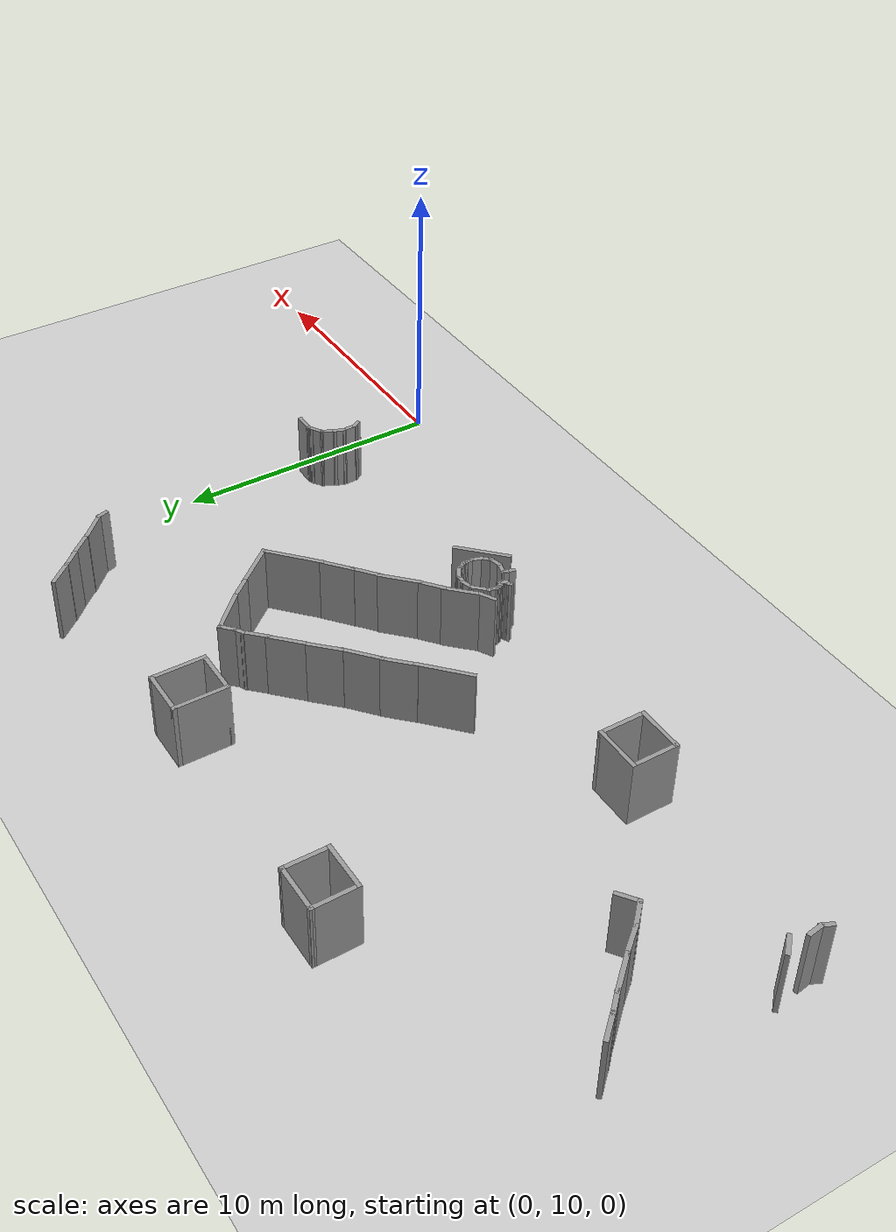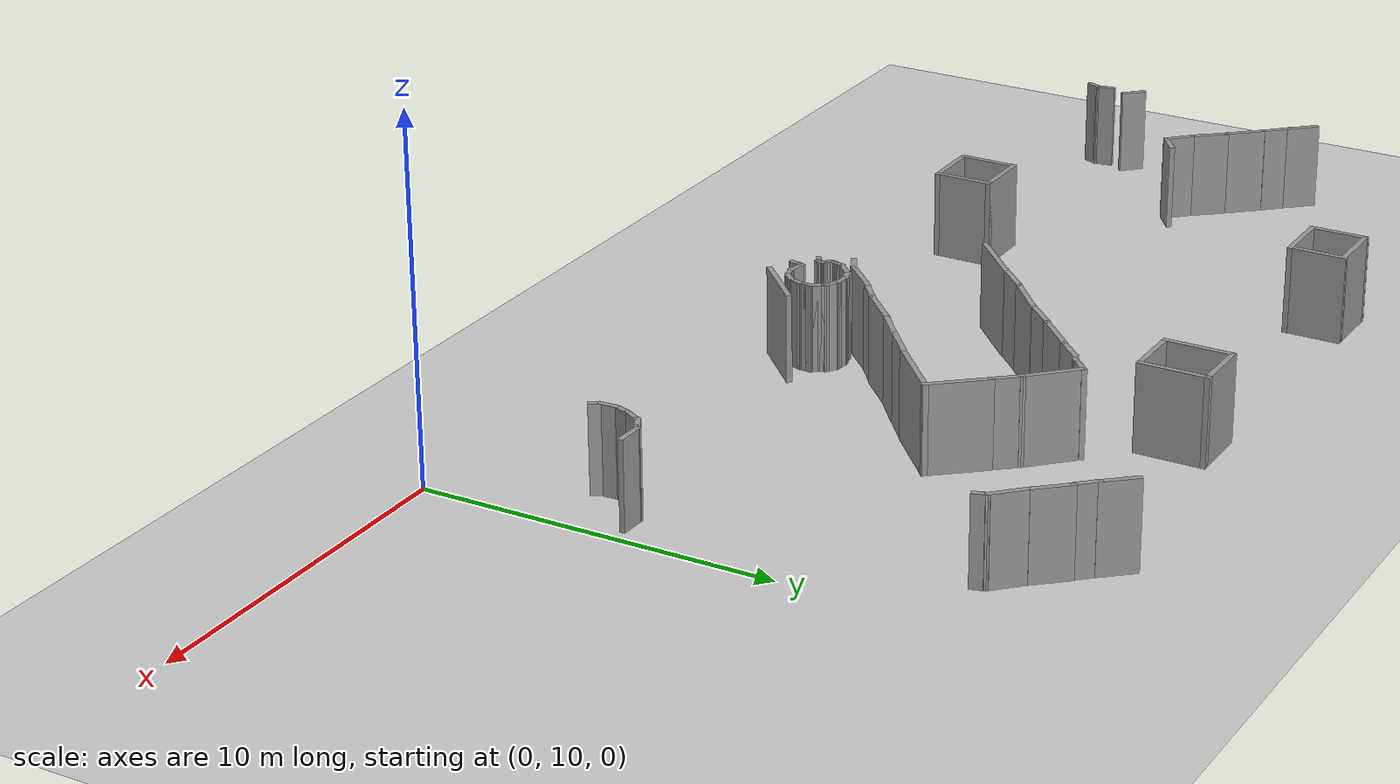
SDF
<sdf version="1.6">
 <world name="default">
  <model name="ground_plane">
   <static>1</static>
   <link name="link">
    <collision name="collision">
     <geometry><plane><normal>0 0 1</normal><size>100 100</size></plane></geometry>
     <surface><friction><ode><mu>100</mu><mu2>50</mu2></ode></friction></surface>
    </collision>
    <visual name="visual">
     <cast_shadows>0</cast_shadows>
     <geometry><plane><normal>0 0 1</normal><size>100 100</size></plane></geometry>
     <material>
      <script><uri>file://media/materials/scripts/gazebo.material</uri><name>Gazebo/Grey</name></script>
     </material>
    </visual>
   </link>
  </model>
  <model name="scene">
   <pose>1.8013 -1.70593 0 0 -0 0</pose>
   <link name="Wall_1061">
    <collision name="Wall_1061_Collision">
     <geometry><box><size>0.60909 0.15 2.5</size></box></geometry>
     <pose>0 0 1.25 0 -0 0</pose>
    </collision>
    <visual name="Wall_1061_Visual">
     <pose>0 0 1.25 0 -0 0</pose>
     <geometry><box><size>0.60909 0.15 2.5</size></box></geometry>
     <material>
      <script><uri>file://media/materials/scripts/gazebo.material</uri><name>Gazebo/Grey</name></script>
      <ambient>1 1 1 1</ambient>
     </material>
    </visual>
    <pose>-30.5621 17.0403 0 0 0 -1.43553</pose>
   </link>
   <link name="Wall_1062">
    <collision name="Wall_1062_Collision">
     <geometry><box><size>0.477971 0.15 2.5</size></box></geometry>
     <pose>0 0 1.25 0 -0 0</pose>
    </collision>
    <visual name="Wall_1062_Visual">
     <pose>0 0 1.25 0 -0 0</pose>
     <geometry><box><size>0.477971 0.15 2.5</size></box></geometry>
     <material>
      <script><uri>file://media/materials/scripts/gazebo.material</uri><name>Gazebo/Grey</name></script>
      <ambient>1 1 1 1</ambient>
     </material>
    </visual>
    <pose>-30.5891 16.664 0 0 0 -2.00416</pose>
   </link>
   <link name="Wall_550">
    <collision name="Wall_550_Collision">
     <geometry><box><size>0.75 0.15 2.5</size></box></geometry>
     <pose>0 0 1.25 0 -0 0</pose>
    </collision>
    <visual name="Wall_550_Visual">
     <pose>0 0 1.25 0 -0 0</pose>
     <geometry><box><size>0.75 0.15 2.5</size></box></geometry>
     <material>
      <script><uri>file://media/materials/scripts/gazebo.material</uri><name>Gazebo/Grey</name></script>
      <ambient>1 1 1 1</ambient>
     </material>
    </visual>
    <pose>-30.553 17.9878 0 0 0 -0.785398</pose>
   </link>
   <link name="Wall_553">
    <collision name="Wall_553_Collision">
     <geometry><box><size>1.00312 0.15 2.5</size></box></geometry>
     <pose>0 0 1.25 0 -0 0</pose>
    </collision>
    <visual name="Wall_553_Visual">
     <pose>0 0 1.25 0 -0 0</pose>
     <geometry><box><size>1.00312 0.15 2.5</size></box></geometry>
     <material>
      <script><uri>file://media/materials/scripts/gazebo.material</uri><name>Gazebo/Grey</name></script>
      <ambient>1 1 1 1</ambient>
     </material>
    </visual>
    <pose>-30.1625 23.6216 0 0 0 -0.837734</pose>
   </link>
   <link name="Wall_554">
    <collision name="Wall_554_Collision">
     <geometry><box><size>0.868427 0.15 2.5</size></box></geometry>
     <pose>0 0 1.25 0 -0 0</pose>
    </collision>
    <visual name="Wall_554_Visual">
     <pose>0 0 1.25 0 -0 0</pose>
     <geometry><box><size>0.868427 0.15 2.5</size></box></geometry>
     <material>
      <script><uri>file://media/materials/scripts/gazebo.material</uri><name>Gazebo/Grey</name></script>
      <ambient>1 1 1 1</ambient>
     </material>
    </visual>
    <pose>-29.6371 23.0475 0 0 0 -0.79753</pose>
   </link>
   <link name="Wall_555">
    <collision name="Wall_555_Collision">
     <geometry><box><size>1.41866 0.15 2.5</size></box></geometry>
     <pose>0 0 1.25 0 -0 0</pose>
    </collision>
    <visual name="Wall_555_Visual">
     <pose>0 0 1.25 0 -0 0</pose>
     <geometry><box><size>1.41866 0.15 2.5</size></box></geometry>
     <material>
      <script><uri>file://media/materials/scripts/gazebo.material</uri><name>Gazebo/Grey</name></script>
      <ambient>1 1 1 1</ambient>
     </material>
    </visual>
    <pose>-28.9775 22.3148 0 0 0 -0.847806</pose>
   </link>
   <link name="Wall_556">
    <collision name="Wall_556_Collision">
     <geometry><box><size>1.12637 0.15 2.5</size></box></geometry>
     <pose>0 0 1.25 0 -0 0</pose>
    </collision>
    <visual name="Wall_556_Visual">
     <pose>0 0 1.25 0 -0 0</pose>
     <geometry><box><size>1.12637 0.15 2.5</size></box></geometry>
     <material>
      <script><uri>file://media/materials/scripts/gazebo.material</uri><name>Gazebo/Grey</name></script>
      <ambient>1 1 1 1</ambient>
     </material>
    </visual>
    <pose>-28.2408 21.4588 0 0 0 -0.893319</pose>
   </link>
   <link name="Wall_557">
    <collision name="Wall_557_Collision">
     <geometry><box><size>1 0.15 2.5</size></box></geometry>
     <pose>0 0 1.25 0 -0 0</pose>
    </collision>
    <visual name="Wall_557_Visual">
     <pose>0 0 1.25 0 -0 0</pose>
     <geometry><box><size>1 0.15 2.5</size></box></geometry>
     <material>
      <script><uri>file://media/materials/scripts/gazebo.material</uri><name>Gazebo/Grey</name></script>
      <ambient>1 1 1 1</ambient>
     </material>
    </visual>
    <pose>-27.6343 20.7779 0 0 0 -0.785398</pose>
   </link>
   <link name="Wall_558">
    <collision name="Wall_558_Collision">
     <geometry><box><size>0.832149 0.15 2.5</size></box></geometry>
     <pose>0 0 1.25 0 -0 0</pose>
    </collision>
    <visual name="Wall_558_Visual">
     <pose>0 0 1.25 0 -0 0</pose>
     <geometry><box><size>0.832149 0.15 2.5</size></box></geometry>
     <material>
      <script><uri>file://media/materials/scripts/gazebo.material</uri><name>Gazebo/Grey</name></script>
      <ambient>1 1 1 1</ambient>
     </material>
    </visual>
    <pose>-27.044 20.6788 0 0 -0 0.631694</pose>
   </link>
   <link name="Wall_560">
    <collision name="Wall_560_Collision">
     <geometry><box><size>2.04855 0.15 2.5</size></box></geometry>
     <pose>0 0 1.25 0 -0 0</pose>
    </collision>
    <visual name="Wall_560_Visual">
     <pose>0 0 1.25 0 -0 0</pose>
     <geometry><box><size>2.04855 0.15 2.5</size></box></geometry>
     <material>
      <script><uri>file://media/materials/scripts/gazebo.material</uri><name>Gazebo/Grey</name></script>
      <ambient>1 1 1 1</ambient>
     </material>
    </visual>
    <pose>-16.7566 20.0535 0 0 -0 0.748078</pose>
   </link>
   <link name="Wall_561">
    <collision name="Wall_561_Collision">
     <geometry><box><size>1.25 0.15 2.5</size></box></geometry>
     <pose>0 0 1.25 0 -0 0</pose>
    </collision>
    <visual name="Wall_561_Visual">
     <pose>0 0 1.25 0 -0 0</pose>
     <geometry><box><size>1.25 0.15 2.5</size></box></geometry>
     <material>
      <script><uri>file://media/materials/scripts/gazebo.material</uri><name>Gazebo/Grey</name></script>
      <ambient>1 1 1 1</ambient>
     </material>
    </visual>
    <pose>-15.6886 21.0882 0 0 -0 0.785398</pose>
   </link>
   <link name="Wall_562">
    <collision name="Wall_562_Collision">
     <geometry><box><size>1.53547 0.15 2.5</size></box></geometry>
     <pose>0 0 1.25 0 -0 0</pose>
    </collision>
    <visual name="Wall_562_Visual">
     <pose>0 0 1.25 0 -0 0</pose>
     <geometry><box><size>1.53547 0.15 2.5</size></box></geometry>
     <material>
      <script><uri>file://media/materials/scripts/gazebo.material</uri><name>Gazebo/Grey</name></script>
      <ambient>1 1 1 1</ambient>
     </material>
    </visual>
    <pose>-14.7565 21.9274 0 0 -0 0.707652</pose>
   </link>
   <link name="Wall_563">
    <collision name="Wall_563_Collision">
     <geometry><box><size>1.25 0.15 2.5</size></box></geometry>
     <pose>0 0 1.25 0 -0 0</pose>
    </collision>
    <visual name="Wall_563_Visual">
     <pose>0 0 1.25 0 -0 0</pose>
     <geometry><box><size>1.25 0.15 2.5</size></box></geometry>
     <material>
      <script><uri>file://media/materials/scripts/gazebo.material</uri><name>Gazebo/Grey</name></script>
      <ambient>1 1 1 1</ambient>
     </material>
    </visual>
    <pose>-13.8579 22.7666 0 0 -0 0.785398</pose>
   </link>
   <link name="Wall_564">
    <collision name="Wall_564_Collision">
     <geometry><box><size>1.49607 0.15 2.5</size></box></geometry>
     <pose>0 0 1.25 0 -0 0</pose>
    </collision>
    <visual name="Wall_564_Visual">
     <pose>0 0 1.25 0 -0 0</pose>
     <geometry><box><size>1.49607 0.15 2.5</size></box></geometry>
     <material>
      <script><uri>file://media/materials/scripts/gazebo.material</uri><name>Gazebo/Grey</name></script>
      <ambient>1 1 1 1</ambient>
     </material>
    </visual>
    <pose>-12.9681 23.623 0 0 -0 0.767855</pose>
   </link>
   <link name="Wall_565">
    <collision name="Wall_565_Collision">
     <geometry><box><size>1 0.15 2.5</size></box></geometry>
     <pose>0 0 1.25 0 -0 0</pose>
    </collision>
    <visual name="Wall_565_Visual">
     <pose>0 0 1.25 0 -0 0</pose>
     <geometry><box><size>1 0.15 2.5</size></box></geometry>
     <material>
      <script><uri>file://media/materials/scripts/gazebo.material</uri><name>Gazebo/Grey</name></script>
      <ambient>1 1 1 1</ambient>
     </material>
    </visual>
    <pose>-12.1834 24.3743 0 0 -0 0.785398</pose>
   </link>
   <link name="Wall_566">
    <collision name="Wall_566_Collision">
     <geometry><box><size>0.402076 0.15 2.5</size></box></geometry>
     <pose>0 0 1.25 0 -0 0</pose>
    </collision>
    <visual name="Wall_566_Visual">
     <pose>0 0 1.25 0 -0 0</pose>
     <geometry><box><size>0.402076 0.15 2.5</size></box></geometry>
     <material>
      <script><uri>file://media/materials/scripts/gazebo.material</uri><name>Gazebo/Grey</name></script>
      <ambient>1 1 1 1</ambient>
     </material>
    </visual>
    <pose>-11.7695 24.7465 0 0 -0 0.451369</pose>
   </link>
   <link name="Wall_567">
    <collision name="Wall_567_Collision">
     <geometry><box><size>0.712449 0.15 2.5</size></box></geometry>
     <pose>0 0 1.25 0 -0 0</pose>
    </collision>
    <visual name="Wall_567_Visual">
     <pose>0 0 1.25 0 -0 0</pose>
     <geometry><box><size>0.712449 0.15 2.5</size></box></geometry>
     <material>
      <script><uri>file://media/materials/scripts/gazebo.material</uri><name>Gazebo/Grey</name></script>
      <ambient>1 1 1 1</ambient>
     </material>
    </visual>
    <pose>-11.4544 24.9975 0 0 -0 0.771276</pose>
   </link>
   <link name="Wall_568">
    <collision name="Wall_568_Collision">
     <geometry><box><size>1.75 0.15 2.5</size></box></geometry>
     <pose>0 0 1.25 0 -0 0</pose>
    </collision>
    <visual name="Wall_568_Visual">
     <pose>0 0 1.25 0 -0 0</pose>
     <geometry><box><size>1.75 0.15 2.5</size></box></geometry>
     <material>
      <script><uri>file://media/materials/scripts/gazebo.material</uri><name>Gazebo/Grey</name></script>
      <ambient>1 1 1 1</ambient>
     </material>
    </visual>
    <pose>-10.6871 24.6112 0 0 0 -0.785398</pose>
   </link>
   <link name="Wall_569">
    <collision name="Wall_569_Collision">
     <geometry><box><size>0.933636 0.15 2.5</size></box></geometry>
     <pose>0 0 1.25 0 -0 0</pose>
    </collision>
    <visual name="Wall_569_Visual">
     <pose>0 0 1.25 0 -0 0</pose>
     <geometry><box><size>0.933636 0.15 2.5</size></box></geometry>
     <material>
      <script><uri>file://media/materials/scripts/gazebo.material</uri><name>Gazebo/Grey</name></script>
      <ambient>1 1 1 1</ambient>
     </material>
    </visual>
    <pose>-9.87125 23.7439 0 0 0 -0.878237</pose>
   </link>
   <link name="Wall_570">
    <collision name="Wall_570_Collision">
     <geometry><box><size>1.8442 0.15 2.5</size></box></geometry>
     <pose>0 0 1.25 0 -0 0</pose>
    </collision>
    <visual name="Wall_570_Visual">
     <pose>0 0 1.25 0 -0 0</pose>
     <geometry><box><size>1.8442 0.15 2.5</size></box></geometry>
     <material>
      <script><uri>file://media/materials/scripts/gazebo.material</uri><name>Gazebo/Grey</name></script>
      <ambient>1 1 1 1</ambient>
     </material>
    </visual>
    <pose>-9.06245 22.7913 0 0 0 -0.876643</pose>
   </link>
   <link name="Wall_571">
    <collision name="Wall_571_Collision">
     <geometry><box><size>2.25211 0.15 2.5</size></box></geometry>
     <pose>0 0 1.25 0 -0 0</pose>
    </collision>
    <visual name="Wall_571_Visual">
     <pose>0 0 1.25 0 -0 0</pose>
     <geometry><box><size>2.25211 0.15 2.5</size></box></geometry>
     <material>
      <script><uri>file://media/materials/scripts/gazebo.material</uri><name>Gazebo/Grey</name></script>
      <ambient>1 1 1 1</ambient>
     </material>
    </visual>
    <pose>-9.29804 21.4497 0 0 0 -2.40348</pose>
   </link>
   <link name="Wall_572">
    <collision name="Wall_572_Collision">
     <geometry><box><size>1.25306 0.15 2.5</size></box></geometry>
     <pose>0 0 1.25 0 -0 0</pose>
    </collision>
    <visual name="Wall_572_Visual">
     <pose>0 0 1.25 0 -0 0</pose>
     <geometry><box><size>1.25306 0.15 2.5</size></box></geometry>
     <material>
      <script><uri>file://media/materials/scripts/gazebo.material</uri><name>Gazebo/Grey</name></script>
      <ambient>1 1 1 1</ambient>
     </material>
    </visual>
    <pose>-10.518 20.3918 0 0 0 -2.45267</pose>
   </link>
   <link name="Wall_573">
    <collision name="Wall_573_Collision">
     <geometry><box><size>1.15459 0.15 2.5</size></box></geometry>
     <pose>0 0 1.25 0 -0 0</pose>
    </collision>
    <visual name="Wall_573_Visual">
     <pose>0 0 1.25 0 -0 0</pose>
     <geometry><box><size>1.15459 0.15 2.5</size></box></geometry>
     <material>
      <script><uri>file://media/materials/scripts/gazebo.material</uri><name>Gazebo/Grey</name></script>
      <ambient>1 1 1 1</ambient>
     </material>
    </visual>
    <pose>-11.3201 19.7285 0 0 0 -2.46966</pose>
   </link>
   <link name="Wall_574">
    <collision name="Wall_574_Collision">
     <geometry><box><size>1.57517 0.15 2.5</size></box></geometry>
     <pose>0 0 1.25 0 -0 0</pose>
    </collision>
    <visual name="Wall_574_Visual">
     <pose>0 0 1.25 0 -0 0</pose>
     <geometry><box><size>1.57517 0.15 2.5</size></box></geometry>
     <material>
      <script><uri>file://media/materials/scripts/gazebo.material</uri><name>Gazebo/Grey</name></script>
      <ambient>1 1 1 1</ambient>
     </material>
    </visual>
    <pose>-12.2254 18.9371 0 0 0 -2.37276</pose>
   </link>
   <link name="Wall_575">
    <collision name="Wall_575_Collision">
     <geometry><box><size>0.987706 0.15 2.5</size></box></geometry>
     <pose>0 0 1.25 0 -0 0</pose>
    </collision>
    <visual name="Wall_575_Visual">
     <pose>0 0 1.25 0 -0 0</pose>
     <geometry><box><size>0.987706 0.15 2.5</size></box></geometry>
     <material>
      <script><uri>file://media/materials/scripts/gazebo.material</uri><name>Gazebo/Grey</name></script>
      <ambient>1 1 1 1</ambient>
     </material>
    </visual>
    <pose>-13.0639 18.1957 0 0 0 -2.46399</pose>
   </link>
   <link name="Wall_577">
    <collision name="Wall_577_Collision">
     <geometry><box><size>1.39506 0.15 2.5</size></box></geometry>
     <pose>0 0 1.25 0 -0 0</pose>
    </collision>
    <visual name="Wall_577_Visual">
     <pose>0 0 1.25 0 -0 0</pose>
     <geometry><box><size>1.39506 0.15 2.5</size></box></geometry>
     <material>
      <script><uri>file://media/materials/scripts/gazebo.material</uri><name>Gazebo/Grey</name></script>
      <ambient>1 1 1 1</ambient>
     </material>
    </visual>
    <pose>-13.8304 17.5096 0 0 -0 0.785398</pose>
   </link>
   <link name="Wall_579">
    <collision name="Wall_579_Collision">
     <geometry><box><size>0.673967 0.15 2.5</size></box></geometry>
     <pose>0 0 1.25 0 -0 0</pose>
    </collision>
    <visual name="Wall_579_Visual">
     <pose>0 0 1.25 0 -0 0</pose>
     <geometry><box><size>0.673967 0.15 2.5</size></box></geometry>
     <material>
      <script><uri>file://media/materials/scripts/gazebo.material</uri><name>Gazebo/Grey</name></script>
      <ambient>1 1 1 1</ambient>
     </material>
    </visual>
    <pose>-14.5009 16.9446 0 0 -0 0.49646</pose>
   </link>
   <link name="Wall_585">
    <collision name="Wall_585_Collision">
     <geometry><box><size>2.04737 0.15 2.5</size></box></geometry>
     <pose>0 0 1.25 0 -0 0</pose>
    </collision>
    <visual name="Wall_585_Visual">
     <pose>0 0 1.25 0 -0 0</pose>
     <geometry><box><size>2.04737 0.15 2.5</size></box></geometry>
     <material>
      <script><uri>file://media/materials/scripts/gazebo.material</uri><name>Gazebo/Grey</name></script>
      <ambient>1 1 1 1</ambient>
     </material>
    </visual>
    <pose>-12.4384 15.8068 0 0 0 -2.36864</pose>
   </link>
   <link name="Wall_590">
    <collision name="Wall_590_Collision">
     <geometry><box><size>0.25 0.15 2.5</size></box></geometry>
     <pose>0 0 1.25 0 -0 0</pose>
    </collision>
    <visual name="Wall_590_Visual">
     <pose>0 0 1.25 0 -0 0</pose>
     <geometry><box><size>0.25 0.15 2.5</size></box></geometry>
     <material>
      <script><uri>file://media/materials/scripts/gazebo.material</uri><name>Gazebo/Grey</name></script>
      <ambient>1 1 1 1</ambient>
     </material>
    </visual>
    <pose>-14.3374 15.9599 0 0 -0 0.523599</pose>
   </link>
   <link name="Wall_591">
    <collision name="Wall_591_Collision">
     <geometry><box><size>0.25 0.15 2.5</size></box></geometry>
     <pose>0 0 1.25 0 -0 0</pose>
    </collision>
    <visual name="Wall_591_Visual">
     <pose>0 0 1.25 0 -0 0</pose>
     <geometry><box><size>0.25 0.15 2.5</size></box></geometry>
     <material>
      <script><uri>file://media/materials/scripts/gazebo.material</uri><name>Gazebo/Grey</name></script>
      <ambient>1 1 1 1</ambient>
     </material>
    </visual>
    <pose>-14.2458 15.9979 0 0 -0 0.261799</pose>
   </link>
   <link name="Wall_592">
    <collision name="Wall_592_Collision">
     <geometry><box><size>0.25 0.15 2.5</size></box></geometry>
     <pose>0 0 1.25 0 -0 0</pose>
    </collision>
    <visual name="Wall_592_Visual">
     <pose>0 0 1.25 0 -0 0</pose>
     <geometry><box><size>0.25 0.15 2.5</size></box></geometry>
     <material>
      <script><uri>file://media/materials/scripts/gazebo.material</uri><name>Gazebo/Grey</name></script>
      <ambient>1 1 1 1</ambient>
     </material>
    </visual>
    <pose>-14.1725 16.0541 0 0 -0 1.0472</pose>
   </link>
   <link name="Wall_593">
    <collision name="Wall_593_Collision">
     <geometry><box><size>0.25 0.15 2.5</size></box></geometry>
     <pose>0 0 1.25 0 -0 0</pose>
    </collision>
    <visual name="Wall_593_Visual">
     <pose>0 0 1.25 0 -0 0</pose>
     <geometry><box><size>0.25 0.15 2.5</size></box></geometry>
     <material>
      <script><uri>file://media/materials/scripts/gazebo.material</uri><name>Gazebo/Grey</name></script>
      <ambient>1 1 1 1</ambient>
     </material>
    </visual>
    <pose>-14.1475 16.1474 0 0 -0 1.5708</pose>
   </link>
   <link name="Wall_594">
    <collision name="Wall_594_Collision">
     <geometry><box><size>0.25 0.15 2.5</size></box></geometry>
     <pose>0 0 1.25 0 -0 0</pose>
    </collision>
    <visual name="Wall_594_Visual">
     <pose>0 0 1.25 0 -0 0</pose>
     <geometry><box><size>0.25 0.15 2.5</size></box></geometry>
     <material>
      <script><uri>file://media/materials/scripts/gazebo.material</uri><name>Gazebo/Grey</name></script>
      <ambient>1 1 1 1</ambient>
     </material>
    </visual>
    <pose>-14.1908 16.2224 0 0 -0 2.61799</pose>
   </link>
   <link name="Wall_595">
    <collision name="Wall_595_Collision">
     <geometry><box><size>0.25 0.15 2.5</size></box></geometry>
     <pose>0 0 1.25 0 -0 0</pose>
    </collision>
    <visual name="Wall_595_Visual">
     <pose>0 0 1.25 0 -0 0</pose>
     <geometry><box><size>0.25 0.15 2.5</size></box></geometry>
     <material>
      <script><uri>file://media/materials/scripts/gazebo.material</uri><name>Gazebo/Grey</name></script>
      <ambient>1 1 1 1</ambient>
     </material>
    </visual>
    <pose>-14.2591 16.2907 0 0 -0 2.0944</pose>
   </link>
   <link name="Wall_596">
    <collision name="Wall_596_Collision">
     <geometry><box><size>0.25 0.15 2.5</size></box></geometry>
     <pose>0 0 1.25 0 -0 0</pose>
    </collision>
    <visual name="Wall_596_Visual">
     <pose>0 0 1.25 0 -0 0</pose>
     <geometry><box><size>0.25 0.15 2.5</size></box></geometry>
     <material>
      <script><uri>file://media/materials/scripts/gazebo.material</uri><name>Gazebo/Grey</name></script>
      <ambient>1 1 1 1</ambient>
     </material>
    </visual>
    <pose>-14.297 16.3823 0 0 -0 1.8326</pose>
   </link>
   <link name="Wall_597">
    <collision name="Wall_597_Collision">
     <geometry><box><size>0.25 0.15 2.5</size></box></geometry>
     <pose>0 0 1.25 0 -0 0</pose>
    </collision>
    <visual name="Wall_597_Visual">
     <pose>0 0 1.25 0 -0 0</pose>
     <geometry><box><size>0.25 0.15 2.5</size></box></geometry>
     <material>
      <script><uri>file://media/materials/scripts/gazebo.material</uri><name>Gazebo/Grey</name></script>
      <ambient>1 1 1 1</ambient>
     </material>
    </visual>
    <pose>-14.297 16.4789 0 0 -0 1.309</pose>
   </link>
   <link name="Wall_598">
    <collision name="Wall_598_Collision">
     <geometry><box><size>0.343446 0.15 2.5</size></box></geometry>
     <pose>0 0 1.25 0 -0 0</pose>
    </collision>
    <visual name="Wall_598_Visual">
     <pose>0 0 1.25 0 -0 0</pose>
     <geometry><box><size>0.343446 0.15 2.5</size></box></geometry>
     <material>
      <script><uri>file://media/materials/scripts/gazebo.material</uri><name>Gazebo/Grey</name></script>
      <ambient>1 1 1 1</ambient>
     </material>
    </visual>
    <pose>-14.2611 16.6212 0 0 -0 1.33058</pose>
   </link>
   <link name="Wall_602">
    <collision name="Wall_602_Collision">
     <geometry><box><size>0.5 0.15 2.5</size></box></geometry>
     <pose>0 0 1.25 0 -0 0</pose>
    </collision>
    <visual name="Wall_602_Visual">
     <pose>0 0 1.25 0 -0 0</pose>
     <geometry><box><size>0.5 0.15 2.5</size></box></geometry>
     <material>
      <script><uri>file://media/materials/scripts/gazebo.material</uri><name>Gazebo/Grey</name></script>
      <ambient>1 1 1 1</ambient>
     </material>
    </visual>
    <pose>-12.9837 17.0947 0 0 -0 2.61799</pose>
   </link>
   <link name="Wall_603">
    <collision name="Wall_603_Collision">
     <geometry><box><size>0.483103 0.15 2.5</size></box></geometry>
     <pose>0 0 1.25 0 -0 0</pose>
    </collision>
    <visual name="Wall_603_Visual">
     <pose>0 0 1.25 0 -0 0</pose>
     <geometry><box><size>0.483103 0.15 2.5</size></box></geometry>
     <material>
      <script><uri>file://media/materials/scripts/gazebo.material</uri><name>Gazebo/Grey</name></script>
      <ambient>1 1 1 1</ambient>
     </material>
    </visual>
    <pose>-13.3007 17.2109 0 0 -0 3.02671</pose>
   </link>
   <link name="Wall_604">
    <collision name="Wall_604_Collision">
     <geometry><box><size>0.5 0.15 2.5</size></box></geometry>
     <pose>0 0 1.25 0 -0 0</pose>
    </collision>
    <visual name="Wall_604_Visual">
     <pose>0 0 1.25 0 -0 0</pose>
     <geometry><box><size>0.5 0.15 2.5</size></box></geometry>
     <material>
      <script><uri>file://media/materials/scripts/gazebo.material</uri><name>Gazebo/Grey</name></script>
      <ambient>1 1 1 1</ambient>
     </material>
    </visual>
    <pose>-13.6352 17.1847 0 0 0 -2.87979</pose>
   </link>
   <link name="Wall_605">
    <collision name="Wall_605_Collision">
     <geometry><box><size>0.75 0.15 2.5</size></box></geometry>
     <pose>0 0 1.25 0 -0 0</pose>
    </collision>
    <visual name="Wall_605_Visual">
     <pose>0 0 1.25 0 -0 0</pose>
     <geometry><box><size>0.75 0.15 2.5</size></box></geometry>
     <material>
      <script><uri>file://media/materials/scripts/gazebo.material</uri><name>Gazebo/Grey</name></script>
      <ambient>1 1 1 1</ambient>
     </material>
    </visual>
    <pose>-14.0259 16.9272 0 0 0 -2.35619</pose>
   </link>
   <link name="Wall_607">
    <collision name="Wall_607_Collision">
     <geometry><box><size>0.25 0.15 2.5</size></box></geometry>
     <pose>0 0 1.25 0 -0 0</pose>
    </collision>
    <visual name="Wall_607_Visual">
     <pose>0 0 1.25 0 -0 0</pose>
     <geometry><box><size>0.25 0.15 2.5</size></box></geometry>
     <material>
      <script><uri>file://media/materials/scripts/gazebo.material</uri><name>Gazebo/Grey</name></script>
      <ambient>1 1 1 1</ambient>
     </material>
    </visual>
    <pose>-12.8072 16.9639 0 0 0 -1.0472</pose>
   </link>
   <link name="Wall_608">
    <collision name="Wall_608_Collision">
     <geometry><box><size>0.25 0.15 2.5</size></box></geometry>
     <pose>0 0 1.25 0 -0 0</pose>
    </collision>
    <visual name="Wall_608_Visual">
     <pose>0 0 1.25 0 -0 0</pose>
     <geometry><box><size>0.25 0.15 2.5</size></box></geometry>
     <material>
      <script><uri>file://media/materials/scripts/gazebo.material</uri><name>Gazebo/Grey</name></script>
      <ambient>1 1 1 1</ambient>
     </material>
    </visual>
    <pose>-12.7572 16.8773 0 0 0 -1.0472</pose>
   </link>
   <link name="Wall_609">
    <collision name="Wall_609_Collision">
     <geometry><box><size>0.25 0.15 2.5</size></box></geometry>
     <pose>0 0 1.25 0 -0 0</pose>
    </collision>
    <visual name="Wall_609_Visual">
     <pose>0 0 1.25 0 -0 0</pose>
     <geometry><box><size>0.25 0.15 2.5</size></box></geometry>
     <material>
      <script><uri>file://media/materials/scripts/gazebo.material</uri><name>Gazebo/Grey</name></script>
      <ambient>1 1 1 1</ambient>
     </material>
    </visual>
    <pose>-12.7072 16.7907 0 0 0 -1.0472</pose>
   </link>
   <link name="Wall_610">
    <collision name="Wall_610_Collision">
     <geometry><box><size>0.25 0.15 2.5</size></box></geometry>
     <pose>0 0 1.25 0 -0 0</pose>
    </collision>
    <visual name="Wall_610_Visual">
     <pose>0 0 1.25 0 -0 0</pose>
     <geometry><box><size>0.25 0.15 2.5</size></box></geometry>
     <material>
      <script><uri>file://media/materials/scripts/gazebo.material</uri><name>Gazebo/Grey</name></script>
      <ambient>1 1 1 1</ambient>
     </material>
    </visual>
    <pose>-12.6572 16.7041 0 0 0 -1.0472</pose>
   </link>
   <link name="Wall_611">
    <collision name="Wall_611_Collision">
     <geometry><box><size>0.25 0.15 2.5</size></box></geometry>
     <pose>0 0 1.25 0 -0 0</pose>
    </collision>
    <visual name="Wall_611_Visual">
     <pose>0 0 1.25 0 -0 0</pose>
     <geometry><box><size>0.25 0.15 2.5</size></box></geometry>
     <material>
      <script><uri>file://media/materials/scripts/gazebo.material</uri><name>Gazebo/Grey</name></script>
      <ambient>1 1 1 1</ambient>
     </material>
    </visual>
    <pose>-12.6322 16.6108 0 0 0 -1.5708</pose>
   </link>
   <link name="Wall_612">
    <collision name="Wall_612_Collision">
     <geometry><box><size>0.25 0.15 2.5</size></box></geometry>
     <pose>0 0 1.25 0 -0 0</pose>
    </collision>
    <visual name="Wall_612_Visual">
     <pose>0 0 1.25 0 -0 0</pose>
     <geometry><box><size>0.25 0.15 2.5</size></box></geometry>
     <material>
      <script><uri>file://media/materials/scripts/gazebo.material</uri><name>Gazebo/Grey</name></script>
      <ambient>1 1 1 1</ambient>
     </material>
    </visual>
    <pose>-12.6322 16.5108 0 0 0 -1.5708</pose>
   </link>
   <link name="Wall_613">
    <collision name="Wall_613_Collision">
     <geometry><box><size>0.25 0.15 2.5</size></box></geometry>
     <pose>0 0 1.25 0 -0 0</pose>
    </collision>
    <visual name="Wall_613_Visual">
     <pose>0 0 1.25 0 -0 0</pose>
     <geometry><box><size>0.25 0.15 2.5</size></box></geometry>
     <material>
      <script><uri>file://media/materials/scripts/gazebo.material</uri><name>Gazebo/Grey</name></script>
      <ambient>1 1 1 1</ambient>
     </material>
    </visual>
    <pose>-12.6322 16.4108 0 0 0 -1.5708</pose>
   </link>
   <link name="Wall_614">
    <collision name="Wall_614_Collision">
     <geometry><box><size>0.5 0.15 2.5</size></box></geometry>
     <pose>0 0 1.25 0 -0 0</pose>
    </collision>
    <visual name="Wall_614_Visual">
     <pose>0 0 1.25 0 -0 0</pose>
     <geometry><box><size>0.5 0.15 2.5</size></box></geometry>
     <material>
      <script><uri>file://media/materials/scripts/gazebo.material</uri><name>Gazebo/Grey</name></script>
      <ambient>1 1 1 1</ambient>
     </material>
    </visual>
    <pose>-12.6774 16.1918 0 0 0 -1.8326</pose>
   </link>
   <link name="Wall_615">
    <collision name="Wall_615_Collision">
     <geometry><box><size>0.5 0.15 2.5</size></box></geometry>
     <pose>0 0 1.25 0 -0 0</pose>
    </collision>
    <visual name="Wall_615_Visual">
     <pose>0 0 1.25 0 -0 0</pose>
     <geometry><box><size>0.5 0.15 2.5</size></box></geometry>
     <material>
      <script><uri>file://media/materials/scripts/gazebo.material</uri><name>Gazebo/Grey</name></script>
      <ambient>1 1 1 1</ambient>
     </material>
    </visual>
    <pose>-12.8465 15.899 0 0 0 -2.35619</pose>
   </link>
   <link name="Wall_616">
    <collision name="Wall_616_Collision">
     <geometry><box><size>0.5 0.15 2.5</size></box></geometry>
     <pose>0 0 1.25 0 -0 0</pose>
    </collision>
    <visual name="Wall_616_Visual">
     <pose>0 0 1.25 0 -0 0</pose>
     <geometry><box><size>0.5 0.15 2.5</size></box></geometry>
     <material>
      <script><uri>file://media/materials/scripts/gazebo.material</uri><name>Gazebo/Grey</name></script>
      <ambient>1 1 1 1</ambient>
     </material>
    </visual>
    <pose>-13.1393 15.73 0 0 0 -2.87979</pose>
   </link>
   <link name="Wall_617">
    <collision name="Wall_617_Collision">
     <geometry><box><size>0.573882 0.15 2.5</size></box></geometry>
     <pose>0 0 1.25 0 -0 0</pose>
    </collision>
    <visual name="Wall_617_Visual">
     <pose>0 0 1.25 0 -0 0</pose>
     <geometry><box><size>0.573882 0.15 2.5</size></box></geometry>
     <material>
      <script><uri>file://media/materials/scripts/gazebo.material</uri><name>Gazebo/Grey</name></script>
      <ambient>1 1 1 1</ambient>
     </material>
    </visual>
    <pose>-13.5143 15.7346 0 0 -0 2.90383</pose>
   </link>
   <link name="Wall_618">
    <collision name="Wall_618_Collision">
     <geometry><box><size>0.256837 0.15 2.5</size></box></geometry>
     <pose>0 0 1.25 0 -0 0</pose>
    </collision>
    <visual name="Wall_618_Visual">
     <pose>0 0 1.25 0 -0 0</pose>
     <geometry><box><size>0.256837 0.15 2.5</size></box></geometry>
     <material>
      <script><uri>file://media/materials/scripts/gazebo.material</uri><name>Gazebo/Grey</name></script>
      <ambient>1 1 1 1</ambient>
     </material>
    </visual>
    <pose>-13.7393 15.7346 0 0 0 -1.93487</pose>
   </link>
   <link name="Wall_620">
    <collision name="Wall_620_Collision">
     <geometry><box><size>0.5 0.15 2.5</size></box></geometry>
     <pose>0 0 1.25 0 -0 0</pose>
    </collision>
    <visual name="Wall_620_Visual">
     <pose>0 0 1.25 0 -0 0</pose>
     <geometry><box><size>0.5 0.15 2.5</size></box></geometry>
     <material>
      <script><uri>file://media/materials/scripts/gazebo.material</uri><name>Gazebo/Grey</name></script>
      <ambient>1 1 1 1</ambient>
     </material>
    </visual>
    <pose>-13.7656 15.6155 0 0 -0 1.309</pose>
   </link>
   <link name="Wall_622">
    <collision name="Wall_622_Collision">
     <geometry><box><size>1.0971 0.15 2.5</size></box></geometry>
     <pose>0 0 1.25 0 -0 0</pose>
    </collision>
    <visual name="Wall_622_Visual">
     <pose>0 0 1.25 0 -0 0</pose>
     <geometry><box><size>1.0971 0.15 2.5</size></box></geometry>
     <material>
      <script><uri>file://media/materials/scripts/gazebo.material</uri><name>Gazebo/Grey</name></script>
      <ambient>1 1 1 1</ambient>
     </material>
    </visual>
    <pose>-6.02324 28.5357 0 0 0 -0.860262</pose>
   </link>
   <link name="Wall_623">
    <collision name="Wall_623_Collision">
     <geometry><box><size>0.785528 0.15 2.5</size></box></geometry>
     <pose>0 0 1.25 0 -0 0</pose>
    </collision>
    <visual name="Wall_623_Visual">
     <pose>0 0 1.25 0 -0 0</pose>
     <geometry><box><size>0.785528 0.15 2.5</size></box></geometry>
     <material>
      <script><uri>file://media/materials/scripts/gazebo.material</uri><name>Gazebo/Grey</name></script>
      <ambient>1 1 1 1</ambient>
     </material>
    </visual>
    <pose>-5.49389 27.9312 0 0 0 -0.803976</pose>
   </link>
   <link name="Wall_624">
    <collision name="Wall_624_Collision">
     <geometry><box><size>1.13698 0.15 2.5</size></box></geometry>
     <pose>0 0 1.25 0 -0 0</pose>
    </collision>
    <visual name="Wall_624_Visual">
     <pose>0 0 1.25 0 -0 0</pose>
     <geometry><box><size>1.13698 0.15 2.5</size></box></geometry>
     <material>
      <script><uri>file://media/materials/scripts/gazebo.material</uri><name>Gazebo/Grey</name></script>
      <ambient>1 1 1 1</ambient>
     </material>
    </visual>
    <pose>-4.92994 27.3326 0 0 0 -0.847081</pose>
   </link>
   <link name="Wall_625">
    <collision name="Wall_625_Collision">
     <geometry><box><size>1.25 0.15 2.5</size></box></geometry>
     <pose>0 0 1.25 0 -0 0</pose>
    </collision>
    <visual name="Wall_625_Visual">
     <pose>0 0 1.25 0 -0 0</pose>
     <geometry><box><size>1.25 0.15 2.5</size></box></geometry>
     <material>
      <script><uri>file://media/materials/scripts/gazebo.material</uri><name>Gazebo/Grey</name></script>
      <ambient>1 1 1 1</ambient>
     </material>
    </visual>
    <pose>-4.23095 26.5739 0 0 0 -0.785398</pose>
   </link>
   <link name="Wall_626">
    <collision name="Wall_626_Collision">
     <geometry><box><size>0.47222 0.15 2.5</size></box></geometry>
     <pose>0 0 1.25 0 -0 0</pose>
    </collision>
    <visual name="Wall_626_Visual">
     <pose>0 0 1.25 0 -0 0</pose>
     <geometry><box><size>0.47222 0.15 2.5</size></box></geometry>
     <material>
      <script><uri>file://media/materials/scripts/gazebo.material</uri><name>Gazebo/Grey</name></script>
      <ambient>1 1 1 1</ambient>
     </material>
    </visual>
    <pose>-3.79713 26.0303 0 0 0 -1.28827</pose>
   </link>
   <link name="Wall_629">
    <collision name="Wall_629_Collision">
     <geometry><box><size>2 0.15 2.5</size></box></geometry>
     <pose>0 0 1.25 0 -0 0</pose>
    </collision>
    <visual name="Wall_629_Visual">
     <pose>0 0 1.25 0 -0 0</pose>
     <geometry><box><size>2 0.15 2.5</size></box></geometry>
     <material>
      <script><uri>file://media/materials/scripts/gazebo.material</uri><name>Gazebo/Grey</name></script>
      <ambient>1 1 1 1</ambient>
     </material>
    </visual>
    <pose>-13.8957 27.185 0 0 0 -1.5708</pose>
   </link>
   <link name="Wall_630">
    <collision name="Wall_630_Collision">
     <geometry><box><size>1.75 0.15 2.5</size></box></geometry>
     <pose>0 0 1.25 0 -0 0</pose>
    </collision>
    <visual name="Wall_630_Visual">
     <pose>0 0 1.25 0 -0 0</pose>
     <geometry><box><size>1.75 0.15 2.5</size></box></geometry>
     <material>
      <script><uri>file://media/materials/scripts/gazebo.material</uri><name>Gazebo/Grey</name></script>
      <ambient>1 1 1 1</ambient>
     </material>
    </visual>
    <pose>-13.0957 26.26 0 0 -0 0</pose>
   </link>
   <link name="Wall_631">
    <collision name="Wall_631_Collision">
     <geometry><box><size>2 0.15 2.5</size></box></geometry>
     <pose>0 0 1.25 0 -0 0</pose>
    </collision>
    <visual name="Wall_631_Visual">
     <pose>0 0 1.25 0 -0 0</pose>
     <geometry><box><size>2 0.15 2.5</size></box></geometry>
     <material>
      <script><uri>file://media/materials/scripts/gazebo.material</uri><name>Gazebo/Grey</name></script>
      <ambient>1 1 1 1</ambient>
     </material>
    </visual>
    <pose>-12.2957 27.185 0 0 -0 1.5708</pose>
   </link>
   <link name="Wall_632">
    <collision name="Wall_632_Collision">
     <geometry><box><size>1.75 0.15 2.5</size></box></geometry>
     <pose>0 0 1.25 0 -0 0</pose>
    </collision>
    <visual name="Wall_632_Visual">
     <pose>0 0 1.25 0 -0 0</pose>
     <geometry><box><size>1.75 0.15 2.5</size></box></geometry>
     <material>
      <script><uri>file://media/materials/scripts/gazebo.material</uri><name>Gazebo/Grey</name></script>
      <ambient>1 1 1 1</ambient>
     </material>
    </visual>
    <pose>-13.0957 28.11 0 0 -0 3.14159</pose>
   </link>
   <link name="Wall_634">
    <collision name="Wall_634_Collision">
     <geometry><box><size>1.68197 0.15 2.5</size></box></geometry>
     <pose>0 0 1.25 0 -0 0</pose>
    </collision>
    <visual name="Wall_634_Visual">
     <pose>0 0 1.25 0 -0 0</pose>
     <geometry><box><size>1.68197 0.15 2.5</size></box></geometry>
     <material>
      <script><uri>file://media/materials/scripts/gazebo.material</uri><name>Gazebo/Grey</name></script>
      <ambient>1 1 1 1</ambient>
     </material>
    </visual>
    <pose>-22.8743 27.5279 0 0 0 -1.56543</pose>
   </link>
   <link name="Wall_635">
    <collision name="Wall_635_Collision">
     <geometry><box><size>1.78339 0.15 2.5</size></box></geometry>
     <pose>0 0 1.25 0 -0 0</pose>
    </collision>
    <visual name="Wall_635_Visual">
     <pose>0 0 1.25 0 -0 0</pose>
     <geometry><box><size>1.78339 0.15 2.5</size></box></geometry>
     <material>
      <script><uri>file://media/materials/scripts/gazebo.material</uri><name>Gazebo/Grey</name></script>
      <ambient>1 1 1 1</ambient>
     </material>
    </visual>
    <pose>-22.0425 26.7622 0 0 -0 0</pose>
   </link>
   <link name="Wall_636">
    <collision name="Wall_636_Collision">
     <geometry><box><size>1.68161 0.15 2.5</size></box></geometry>
     <pose>0 0 1.25 0 -0 0</pose>
    </collision>
    <visual name="Wall_636_Visual">
     <pose>0 0 1.25 0 -0 0</pose>
     <geometry><box><size>1.68161 0.15 2.5</size></box></geometry>
     <material>
      <script><uri>file://media/materials/scripts/gazebo.material</uri><name>Gazebo/Grey</name></script>
      <ambient>1 1 1 1</ambient>
     </material>
    </visual>
    <pose>-21.2325 27.5279 0 0 -0 1.56526</pose>
   </link>
   <link name="Wall_637">
    <collision name="Wall_637_Collision">
     <geometry><box><size>1.78339 0.15 2.5</size></box></geometry>
     <pose>0 0 1.25 0 -0 0</pose>
    </collision>
    <visual name="Wall_637_Visual">
     <pose>0 0 1.25 0 -0 0</pose>
     <geometry><box><size>1.78339 0.15 2.5</size></box></geometry>
     <material>
      <script><uri>file://media/materials/scripts/gazebo.material</uri><name>Gazebo/Grey</name></script>
      <ambient>1 1 1 1</ambient>
     </material>
    </visual>
    <pose>-22.0617 28.2936 0 0 -0 3.14159</pose>
   </link>
   <link name="Wall_639">
    <collision name="Wall_639_Collision">
     <geometry><box><size>1.75 0.15 2.5</size></box></geometry>
     <pose>0 0 1.25 0 -0 0</pose>
    </collision>
    <visual name="Wall_639_Visual">
     <pose>0 0 1.25 0 -0 0</pose>
     <geometry><box><size>1.75 0.15 2.5</size></box></geometry>
     <material>
      <script><uri>file://media/materials/scripts/gazebo.material</uri><name>Gazebo/Grey</name></script>
      <ambient>1 1 1 1</ambient>
     </material>
    </visual>
    <pose>-23.1495 16.7033 0 0 0 -1.5708</pose>
   </link>
   <link name="Wall_640">
    <collision name="Wall_640_Collision">
     <geometry><box><size>1.75 0.15 2.5</size></box></geometry>
     <pose>0 0 1.25 0 -0 0</pose>
    </collision>
    <visual name="Wall_640_Visual">
     <pose>0 0 1.25 0 -0 0</pose>
     <geometry><box><size>1.75 0.15 2.5</size></box></geometry>
     <material>
      <script><uri>file://media/materials/scripts/gazebo.material</uri><name>Gazebo/Grey</name></script>
      <ambient>1 1 1 1</ambient>
     </material>
    </visual>
    <pose>-22.3494 15.9033 0 0 -0 0</pose>
   </link>
   <link name="Wall_641">
    <collision name="Wall_641_Collision">
     <geometry><box><size>1.75 0.15 2.5</size></box></geometry>
     <pose>0 0 1.25 0 -0 0</pose>
    </collision>
    <visual name="Wall_641_Visual">
     <pose>0 0 1.25 0 -0 0</pose>
     <geometry><box><size>1.75 0.15 2.5</size></box></geometry>
     <material>
      <script><uri>file://media/materials/scripts/gazebo.material</uri><name>Gazebo/Grey</name></script>
      <ambient>1 1 1 1</ambient>
     </material>
    </visual>
    <pose>-21.5495 16.7033 0 0 -0 1.5708</pose>
   </link>
   <link name="Wall_642">
    <collision name="Wall_642_Collision">
     <geometry><box><size>1.75 0.15 2.5</size></box></geometry>
     <pose>0 0 1.25 0 -0 0</pose>
    </collision>
    <visual name="Wall_642_Visual">
     <pose>0 0 1.25 0 -0 0</pose>
     <geometry><box><size>1.75 0.15 2.5</size></box></geometry>
     <material>
      <script><uri>file://media/materials/scripts/gazebo.material</uri><name>Gazebo/Grey</name></script>
      <ambient>1 1 1 1</ambient>
     </material>
    </visual>
    <pose>-22.3494 17.5033 0 0 -0 3.14159</pose>
   </link>
   <link name="Wall_694">
    <collision name="Wall_694_Collision">
     <geometry><box><size>0.404691 0.15 2.5</size></box></geometry>
     <pose>0 0 1.25 0 -0 0</pose>
    </collision>
    <visual name="Wall_694_Visual">
     <pose>0 0 1.25 0 -0 0</pose>
     <geometry><box><size>0.404691 0.15 2.5</size></box></geometry>
     <material>
      <script><uri>file://media/materials/scripts/gazebo.material</uri><name>Gazebo/Grey</name></script>
      <ambient>1 1 1 1</ambient>
     </material>
    </visual>
    <pose>-3.63728 15.6471 0 0 -0 2.10541</pose>
   </link>
   <link name="Wall_695">
    <collision name="Wall_695_Collision">
     <geometry><box><size>0.632554 0.15 2.5</size></box></geometry>
     <pose>0 0 1.25 0 -0 0</pose>
    </collision>
    <visual name="Wall_695_Visual">
     <pose>0 0 1.25 0 -0 0</pose>
     <geometry><box><size>0.632554 0.15 2.5</size></box></geometry>
     <material>
      <script><uri>file://media/materials/scripts/gazebo.material</uri><name>Gazebo/Grey</name></script>
      <ambient>1 1 1 1</ambient>
     </material>
    </visual>
    <pose>-3.7174 15.9894 0 0 -0 1.59915</pose>
   </link>
   <link name="Wall_697">
    <collision name="Wall_697_Collision">
     <geometry><box><size>0.497537 0.15 2.5</size></box></geometry>
     <pose>0 0 1.25 0 -0 0</pose>
    </collision>
    <visual name="Wall_697_Visual">
     <pose>0 0 1.25 0 -0 0</pose>
     <geometry><box><size>0.497537 0.15 2.5</size></box></geometry>
     <material>
      <script><uri>file://media/materials/scripts/gazebo.material</uri><name>Gazebo/Grey</name></script>
      <ambient>1 1 1 1</ambient>
     </material>
    </visual>
    <pose>-3.66146 16.3957 0 0 -0 1.25247</pose>
   </link>
   <link name="Wall_698">
    <collision name="Wall_698_Collision">
     <geometry><box><size>0.624526 0.15 2.5</size></box></geometry>
     <pose>0 0 1.25 0 -0 0</pose>
    </collision>
    <visual name="Wall_698_Visual">
     <pose>0 0 1.25 0 -0 0</pose>
     <geometry><box><size>0.624526 0.15 2.5</size></box></geometry>
     <material>
      <script><uri>file://media/materials/scripts/gazebo.material</uri><name>Gazebo/Grey</name></script>
      <ambient>1 1 1 1</ambient>
     </material>
    </visual>
    <pose>-3.50036 16.7682 0 0 -0 1.06423</pose>
   </link>
   <link name="Wall_699">
    <collision name="Wall_699_Collision">
     <geometry><box><size>0.548108 0.15 2.5</size></box></geometry>
     <pose>0 0 1.25 0 -0 0</pose>
    </collision>
    <visual name="Wall_699_Visual">
     <pose>0 0 1.25 0 -0 0</pose>
     <geometry><box><size>0.548108 0.15 2.5</size></box></geometry>
     <material>
      <script><uri>file://media/materials/scripts/gazebo.material</uri><name>Gazebo/Grey</name></script>
      <ambient>1 1 1 1</ambient>
     </material>
    </visual>
    <pose>-3.21733 17.091 0 0 -0 0.56692</pose>
   </link>
   <link name="Wall_700">
    <collision name="Wall_700_Collision">
     <geometry><box><size>0.294761 0.15 2.5</size></box></geometry>
     <pose>0 0 1.25 0 -0 0</pose>
    </collision>
    <visual name="Wall_700_Visual">
     <pose>0 0 1.25 0 -0 0</pose>
     <geometry><box><size>0.294761 0.15 2.5</size></box></geometry>
     <material>
      <script><uri>file://media/materials/scripts/gazebo.material</uri><name>Gazebo/Grey</name></script>
      <ambient>1 1 1 1</ambient>
     </material>
    </visual>
    <pose>-2.98327 17.2356 0 0 -0 0.418047</pose>
   </link>
   <link name="Wall_701">
    <collision name="Wall_701_Collision">
     <geometry><box><size>0.815693 0.15 2.5</size></box></geometry>
     <pose>0 0 1.25 0 -0 0</pose>
    </collision>
    <visual name="Wall_701_Visual">
     <pose>0 0 1.25 0 -0 0</pose>
     <geometry><box><size>0.815693 0.15 2.5</size></box></geometry>
     <material>
      <script><uri>file://media/materials/scripts/gazebo.material</uri><name>Gazebo/Grey</name></script>
      <ambient>1 1 1 1</ambient>
     </material>
    </visual>
    <pose>-2.58437 17.2655 0 0 0 -0.023848</pose>
   </link>
   <static>1</static>
  </model>
 </world>
</sdf>
